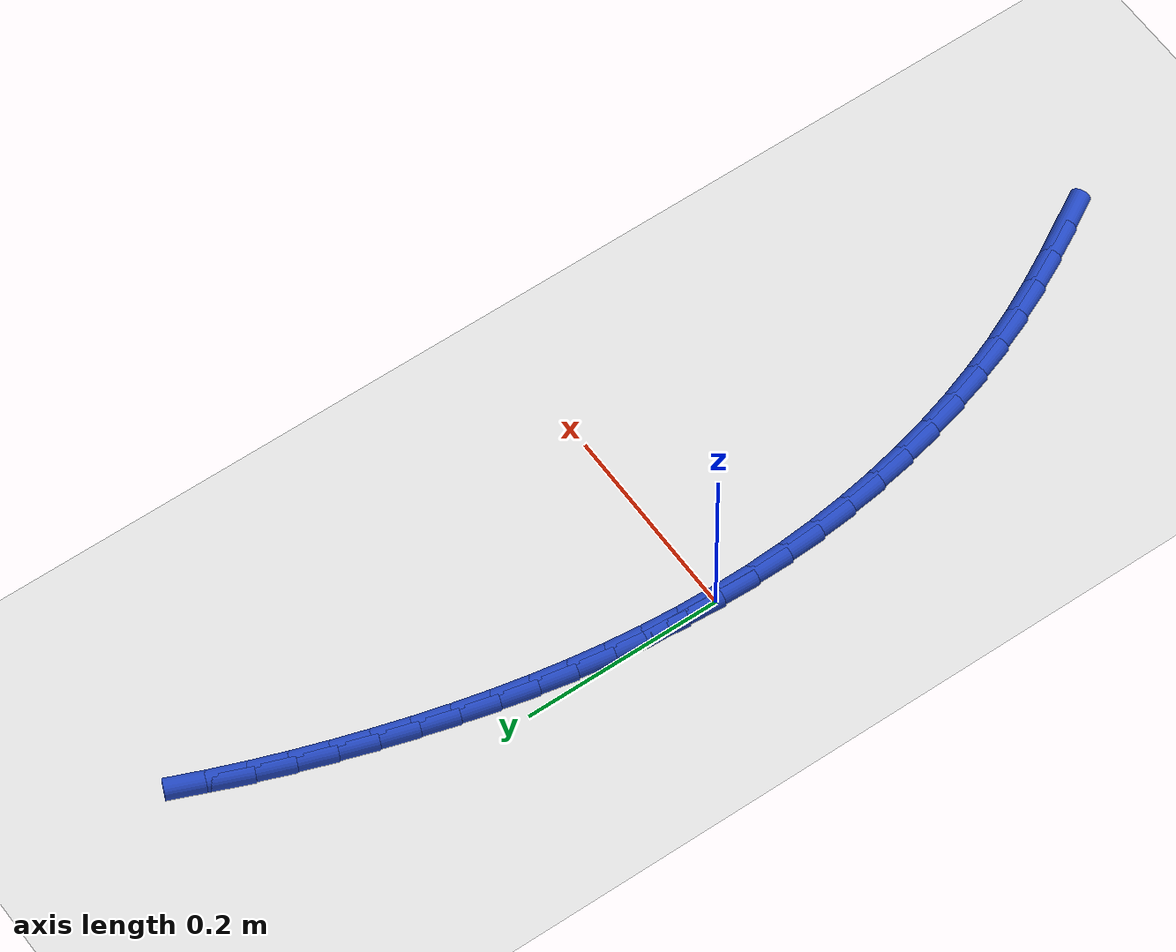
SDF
<sdf version="1.6">
 <world name="default">
  <model name="ground_plane">
   <static>1</static>
   <link name="link">
    <collision name="collision">
     <geometry><plane><normal>0 0 1</normal><size>100 100</size></plane></geometry>
     <surface><friction><ode><mu>100</mu><mu2>50</mu2></ode></friction></surface>
    </collision>
    <visual name="visual">
     <cast_shadows>0</cast_shadows>
     <geometry><plane><normal>0 0 1</normal><size>100 100</size></plane></geometry>
     <material>
      <script><uri>file://media/materials/scripts/gazebo.material</uri><name>Gazebo/WhiteGlow</name></script>
     </material>
    </visual>
   </link>
  </model>
  <model name="line">
   <link name="link_0">
    <pose>-1.3877787807814457e-17 -9.71445146547012e-17 0.01 0 1.57 1.53493639392555</pose>
    <collision name="collision">
     <geometry><cylinder><radius>0.01</radius><length>0.08</length></cylinder></geometry>
    </collision>
    <visual name="visual">
     <material>
      <script><name>Gazebo/Blue</name><uri>file://media/materials/scripts/gazebo.material</uri></script>
     </material>
     <geometry><cylinder><radius>0.01</radius><length>0.08</length></cylinder></geometry>
    </visual>
   </link>
   <link name="link_1">
    <pose>0.0013186399837848168 0.03675619560647925 0.01 0 1.57 1.4972960182008648</pose>
    <collision name="collision">
     <geometry><cylinder><radius>0.01</radius><length>0.08</length></cylinder></geometry>
    </collision>
    <visual name="visual">
     <material>
      <script><name>Gazebo/Blue</name><uri>file://media/materials/scripts/gazebo.material</uri></script>
     </material>
     <geometry><cylinder><radius>0.01</radius><length>0.08</length></cylinder></geometry>
    </visual>
   </link>
   <link name="link_2">
    <pose>0.004012989869933039 0.07334782764140409 0.01 0 1.57 1.4615807076959424</pose>
    <collision name="collision">
     <geometry><cylinder><radius>0.01</radius><length>0.08</length></cylinder></geometry>
    </collision>
    <visual name="visual">
     <material>
      <script><name>Gazebo/Blue</name><uri>file://media/materials/scripts/gazebo.material</uri></script>
     </material>
     <geometry><cylinder><radius>0.01</radius><length>0.08</length></cylinder></geometry>
    </visual>
   </link>
   <link name="link_3">
    <pose>0.008007046865664117 0.10977269019210055 0.01 0 1.57 1.4278628527324304</pose>
    <collision name="collision">
     <geometry><cylinder><radius>0.01</radius><length>0.08</length></cylinder></geometry>
    </collision>
    <visual name="visual">
     <material>
      <script><name>Gazebo/Blue</name><uri>file://media/materials/scripts/gazebo.material</uri></script>
     </material>
     <geometry><cylinder><radius>0.01</radius><length>0.08</length></cylinder></geometry>
    </visual>
   </link>
   <link name="link_4">
    <pose>0.013224808178197517 0.1460285773458948 0.01 0 1.57 1.396189340337191</pose>
    <collision name="collision">
     <geometry><cylinder><radius>0.01</radius><length>0.08</length></cylinder></geometry>
    </collision>
    <visual name="visual">
     <material>
      <script><name>Gazebo/Blue</name><uri>file://media/materials/scripts/gazebo.material</uri></script>
     </material>
     <geometry><cylinder><radius>0.01</radius><length>0.08</length></cylinder></geometry>
    </visual>
   </link>
   <link name="link_5">
    <pose>0.0195902710147527 0.18211328319011302 0.01 0 1.57 1.3665851944947651</pose>
    <collision name="collision">
     <geometry><cylinder><radius>0.01</radius><length>0.08</length></cylinder></geometry>
    </collision>
    <visual name="visual">
     <material>
      <script><name>Gazebo/Blue</name><uri>file://media/materials/scripts/gazebo.material</uri></script>
     </material>
     <geometry><cylinder><radius>0.01</radius><length>0.08</length></cylinder></geometry>
    </visual>
   </link>
   <link name="link_6">
    <pose>0.027027432582549117 0.21802460181208128 0.01 0 1.57 1.3390574211833635</pose>
    <collision name="collision">
     <geometry><cylinder><radius>0.01</radius><length>0.08</length></cylinder></geometry>
    </collision>
    <visual name="visual">
     <material>
      <script><name>Gazebo/Blue</name><uri>file://media/materials/scripts/gazebo.material</uri></script>
     </material>
     <geometry><cylinder><radius>0.01</radius><length>0.08</length></cylinder></geometry>
    </visual>
   </link>
   <link name="link_7">
    <pose>0.03546029008880625 0.2537603272991258 0.01 0 1.57 1.3135988222817918</pose>
    <collision name="collision">
     <geometry><cylinder><radius>0.01</radius><length>0.08</length></cylinder></geometry>
    </collision>
    <visual name="visual">
     <material>
      <script><name>Gazebo/Blue</name><uri>file://media/materials/scripts/gazebo.material</uri></script>
     </material>
     <geometry><cylinder><radius>0.01</radius><length>0.08</length></cylinder></geometry>
    </visual>
   </link>
   <link name="link_8">
    <pose>0.04481284074074355 0.2893182537385728 0.01 0 1.57 1.2901916097862556</pose>
    <collision name="collision">
     <geometry><cylinder><radius>0.01</radius><length>0.08</length></cylinder></geometry>
    </collision>
    <visual name="visual">
     <material>
      <script><name>Gazebo/Blue</name><uri>file://media/materials/scripts/gazebo.material</uri></script>
     </material>
     <geometry><cylinder><radius>0.01</radius><length>0.08</length></cylinder></geometry>
    </visual>
   </link>
   <link name="link_9">
    <pose>0.05500908174558049 0.32469617521774835 0.01 0 1.57 1.2687317069449093</pose>
    <collision name="collision">
     <geometry><cylinder><radius>0.01</radius><length>0.08</length></cylinder></geometry>
    </collision>
    <visual name="visual">
     <material>
      <script><name>Gazebo/Blue</name><uri>file://media/materials/scripts/gazebo.material</uri></script>
     </material>
     <geometry><cylinder><radius>0.01</radius><length>0.08</length></cylinder></geometry>
    </visual>
   </link>
   <link name="link_10">
    <pose>0.0659756748409414 0.35989064676023386 0.01 0 1.57 1.2474392900128795</pose>
    <collision name="collision">
     <geometry><cylinder><radius>0.01</radius><length>0.08</length></cylinder></geometry>
    </collision>
    <visual name="visual">
     <material>
      <script><name>Gazebo/Blue</name><uri>file://media/materials/scripts/gazebo.material</uri></script>
     </material>
     <geometry><cylinder><radius>0.01</radius><length>0.08</length></cylinder></geometry>
    </visual>
   </link>
   <link name="link_11">
    <pose>0.07769820583513998 0.39487082243387633 0.01 0 1.57 1.2245590307065426</pose>
    <collision name="collision">
     <geometry><cylinder><radius>0.01</radius><length>0.08</length></cylinder></geometry>
    </collision>
    <visual name="visual">
     <material>
      <script><name>Gazebo/Blue</name><uri>file://media/materials/scripts/gazebo.material</uri></script>
     </material>
     <geometry><cylinder><radius>0.01</radius><length>0.08</length></cylinder></geometry>
    </visual>
   </link>
   <link name="link_12">
    <pose>0.09021990250559205 0.4295790515555042 0.01 0 1.57 1.199969074440465</pose>
    <collision name="collision">
     <geometry><cylinder><radius>0.01</radius><length>0.08</length></cylinder></geometry>
    </collision>
    <visual name="visual">
     <material>
      <script><name>Gazebo/Blue</name><uri>file://media/materials/scripts/gazebo.material</uri></script>
     </material>
     <geometry><cylinder><radius>0.01</radius><length>0.08</length></cylinder></geometry>
    </visual>
   </link>
   <link name="link_13">
    <pose>0.10358640070089928 0.46395656363723464 0.01 0 1.57 1.1736194752285145</pose>
    <collision name="collision">
     <geometry><cylinder><radius>0.01</radius><length>0.08</length></cylinder></geometry>
    </collision>
    <visual name="visual">
     <material>
      <script><name>Gazebo/Blue</name><uri>file://media/materials/scripts/gazebo.material</uri></script>
     </material>
     <geometry><cylinder><radius>0.01</radius><length>0.08</length></cylinder></geometry>
    </visual>
   </link>
   <link name="link_166">
    <pose>0.13362021962958578 -0.48731198481450616 0.01 0 1.57 -1.0452317401606646</pose>
    <collision name="collision">
     <geometry><cylinder><radius>0.01</radius><length>0.08</length></cylinder></geometry>
    </collision>
    <visual name="visual">
     <material>
      <script><name>Gazebo/Blue</name><uri>file://media/materials/scripts/gazebo.material</uri></script>
     </material>
     <geometry><cylinder><radius>0.01</radius><length>0.08</length></cylinder></geometry>
    </visual>
   </link>
   <link name="link_167">
    <pose>0.11541763313958465 -0.45592682605728935 0.01 0 1.57 -1.0739506466550046</pose>
    <collision name="collision">
     <geometry><cylinder><radius>0.01</radius><length>0.08</length></cylinder></geometry>
    </collision>
    <visual name="visual">
     <material>
      <script><name>Gazebo/Blue</name><uri>file://media/materials/scripts/gazebo.material</uri></script>
     </material>
     <geometry><cylinder><radius>0.01</radius><length>0.08</length></cylinder></geometry>
    </visual>
   </link>
   <link name="link_168">
    <pose>0.09819994783595669 -0.42417240539830575 0.01 0 1.57 -1.10815924308298</pose>
    <collision name="collision">
     <geometry><cylinder><radius>0.01</radius><length>0.08</length></cylinder></geometry>
    </collision>
    <visual name="visual">
     <material>
      <script><name>Gazebo/Blue</name><uri>file://media/materials/scripts/gazebo.material</uri></script>
     </material>
     <geometry><cylinder><radius>0.01</radius><length>0.08</length></cylinder></geometry>
    </visual>
   </link>
   <link name="link_169">
    <pose>0.08211278009772346 -0.391916622836306 0.01 0 1.57 -1.147667492281446</pose>
    <collision name="collision">
     <geometry><cylinder><radius>0.01</radius><length>0.08</length></cylinder></geometry>
    </collision>
    <visual name="visual">
     <material>
      <script><name>Gazebo/Blue</name><uri>file://media/materials/scripts/gazebo.material</uri></script>
     </material>
     <geometry><cylinder><radius>0.01</radius><length>0.08</length></cylinder></geometry>
    </visual>
   </link>
   <link name="link_170">
    <pose>0.0673017463039063 -0.35902737837004034 0.01 0 1.57 -1.1920277924025966</pose>
    <collision name="collision">
     <geometry><cylinder><radius>0.01</radius><length>0.08</length></cylinder></geometry>
    </collision>
    <visual name="visual">
     <material>
      <script><name>Gazebo/Blue</name><uri>file://media/materials/scripts/gazebo.material</uri></script>
     </material>
     <geometry><cylinder><radius>0.01</radius><length>0.08</length></cylinder></geometry>
    </visual>
   </link>
   <link name="link_171">
    <pose>0.05390948815052389 -0.32537726265608446 0.01 0 1.57 -1.237933043293129</pose>
    <collision name="collision">
     <geometry><cylinder><radius>0.01</radius><length>0.08</length></cylinder></geometry>
    </collision>
    <visual name="visual">
     <material>
      <script><name>Gazebo/Blue</name><uri>file://media/materials/scripts/gazebo.material</uri></script>
     </material>
     <geometry><cylinder><radius>0.01</radius><length>0.08</length></cylinder></geometry>
    </visual>
   </link>
   <link name="link_172">
    <pose>0.04200744238467701 -0.29095114656719484 0.01 0 1.57 -1.2824147524573752</pose>
    <collision name="collision">
     <geometry><cylinder><radius>0.01</radius><length>0.08</length></cylinder></geometry>
    </collision>
    <visual name="visual">
     <material>
      <script><name>Gazebo/Blue</name><uri>file://media/materials/scripts/gazebo.material</uri></script>
     </material>
     <geometry><cylinder><radius>0.01</radius><length>0.08</length></cylinder></geometry>
    </visual>
   </link>
   <link name="link_173">
    <pose>0.03159425702836295 -0.25584867858519456 0.01 0 1.57 -1.3255413735333783</pose>
    <collision name="collision">
     <geometry><cylinder><radius>0.01</radius><length>0.08</length></cylinder></geometry>
    </collision>
    <visual name="visual">
     <material>
      <script><name>Gazebo/Blue</name><uri>file://media/materials/scripts/gazebo.material</uri></script>
     </material>
     <geometry><cylinder><radius>0.01</radius><length>0.08</length></cylinder></geometry>
    </visual>
   </link>
   <link name="link_174">
    <pose>0.0226652886172831 -0.22017469740408244 0.01 0 1.57 -1.3675209343849757</pose>
    <collision name="collision">
     <geometry><cylinder><radius>0.01</radius><length>0.08</length></cylinder></geometry>
    </collision>
    <visual name="visual">
     <material>
      <script><name>Gazebo/Blue</name><uri>file://media/materials/scripts/gazebo.material</uri></script>
     </material>
     <geometry><cylinder><radius>0.01</radius><length>0.08</length></cylinder></geometry>
    </visual>
   </link>
   <link name="link_175">
    <pose>0.015215893687138833 -0.18403404171785737 0.01 0 1.57 -1.4085620094318607</pose>
    <collision name="collision">
     <geometry><cylinder><radius>0.01</radius><length>0.08</length></cylinder></geometry>
    </collision>
    <visual name="visual">
     <material>
      <script><name>Gazebo/Blue</name><uri>file://media/materials/scripts/gazebo.material</uri></script>
     </material>
     <geometry><cylinder><radius>0.01</radius><length>0.08</length></cylinder></geometry>
    </visual>
   </link>
   <link name="link_176">
    <pose>0.009241428773631445 -0.14753155022051764 0.01 0 1.57 -1.448873042616381</pose>
    <collision name="collision">
     <geometry><cylinder><radius>0.01</radius><length>0.08</length></cylinder></geometry>
    </collision>
    <visual name="visual">
     <material>
      <script><name>Gazebo/Blue</name><uri>file://media/materials/scripts/gazebo.material</uri></script>
     </material>
     <geometry><cylinder><radius>0.01</radius><length>0.08</length></cylinder></geometry>
    </visual>
   </link>
   <link name="link_177">
    <pose>0.004737250412462558 -0.11077206160606352 0.01 0 1.57 -1.4886623717366738</pose>
    <collision name="collision">
     <geometry><cylinder><radius>0.01</radius><length>0.08</length></cylinder></geometry>
    </collision>
    <visual name="visual">
     <material>
      <script><name>Gazebo/Blue</name><uri>file://media/materials/scripts/gazebo.material</uri></script>
     </material>
     <geometry><cylinder><radius>0.01</radius><length>0.08</length></cylinder></geometry>
    </visual>
   </link>
   <link name="link_178">
    <pose>0.001698715139333424 -0.0738604145684933 0.01 0 1.57 -1.5281387849689398</pose>
    <collision name="collision">
     <geometry><cylinder><radius>0.01</radius><length>0.08</length></cylinder></geometry>
    </collision>
    <visual name="visual">
     <material>
      <script><name>Gazebo/Blue</name><uri>file://media/materials/scripts/gazebo.material</uri></script>
     </material>
     <geometry><cylinder><radius>0.01</radius><length>0.08</length></cylinder></geometry>
    </visual>
   </link>
   <link name="link_179">
    <pose>0.00012117948994543656 -0.03690144780180587 0.01 0 1.57 -1.5675124704267749</pose>
    <collision name="collision">
     <geometry><cylinder><radius>0.01</radius><length>0.08</length></cylinder></geometry>
    </collision>
    <visual name="visual">
     <material>
      <script><name>Gazebo/Blue</name><uri>file://media/materials/scripts/gazebo.material</uri></script>
     </material>
     <geometry><cylinder><radius>0.01</radius><length>0.08</length></cylinder></geometry>
    </visual>
   </link>
   <link name="link_180">
    <pose>-1.734723475976807e-17 -1.5959455978986625e-16 0.01 0 1.57 1.5345964111924806</pose>
    <collision name="collision">
     <geometry><cylinder><radius>0.01</radius><length>0.08</length></cylinder></geometry>
    </collision>
    <visual name="visual">
     <material>
      <script><name>Gazebo/Blue</name><uri>file://media/materials/scripts/gazebo.material</uri></script>
     </material>
     <geometry><cylinder><radius>0.01</radius><length>0.08</length></cylinder></geometry>
    </visual>
   </link>
   <link name="link_181">
    <pose>0.001330533205198452 0.03673909014292486 0.01 0 1.57 1.5345964111924806</pose>
    <collision name="collision">
     <geometry><cylinder><radius>0.01</radius><length>0.08</length></cylinder></geometry>
    </collision>
    <visual name="visual">
     <material>
      <script><name>Gazebo/Blue</name><uri>file://media/materials/scripts/gazebo.material</uri></script>
     </material>
     <geometry><cylinder><radius>0.01</radius><length>0.08</length></cylinder></geometry>
    </visual>
   </link>
  </model>
 </world>
</sdf>
